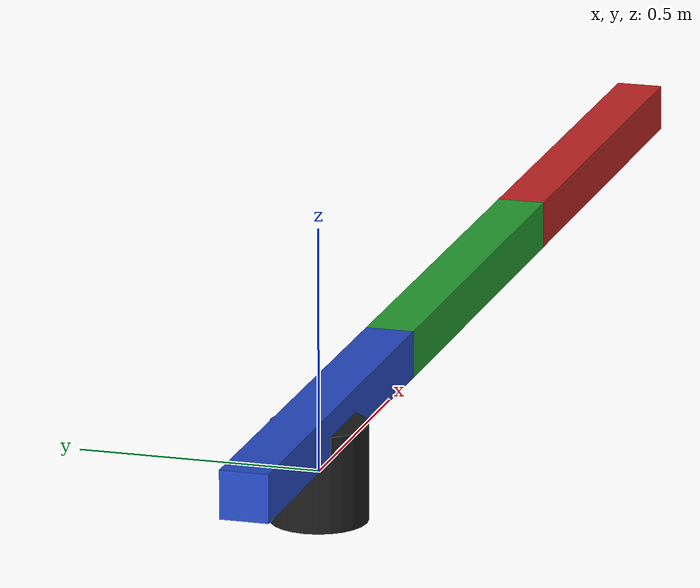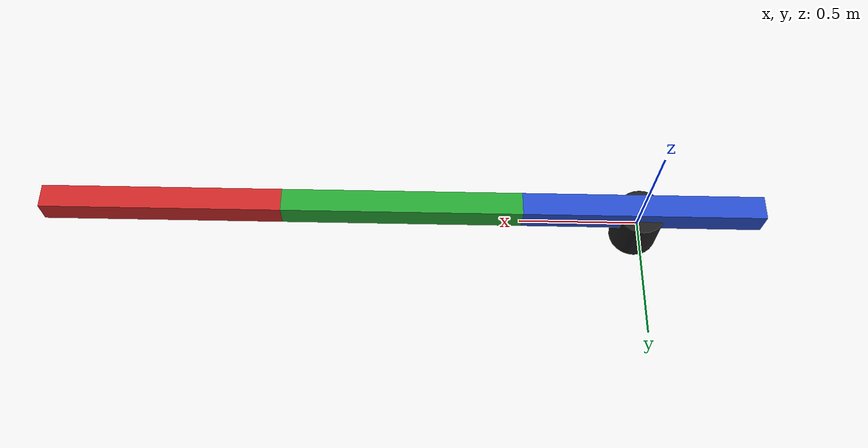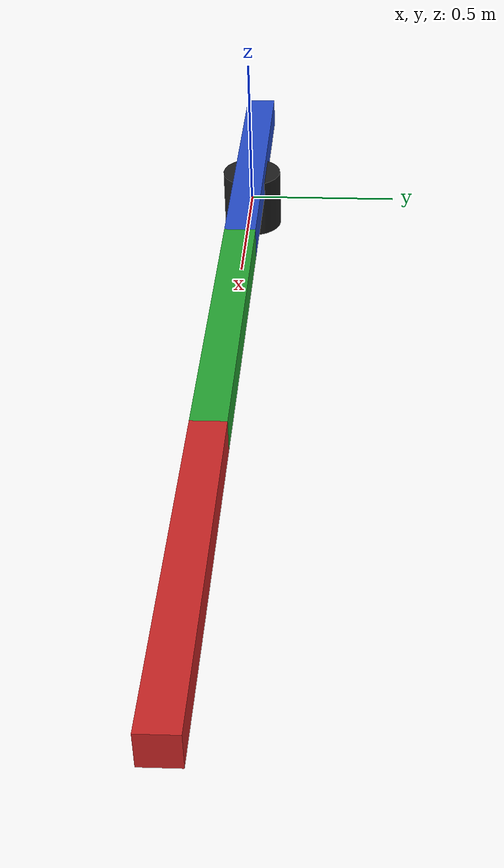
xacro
<?xml version="1.0"?>
<robot xmlns:xacro="http://www.ros.org/wiki/xacro" name="three_arm_robot">
  <!-- Properties -->
  <xacro:property name="link_length" value="1.0"/> <!-- Length of each arm -->
  <xacro:property name="link_width" value="0.1"/> <!-- Width of each arm -->
  <xacro:property name="joint_limit" value="1.5708"/> <!-- 90 degrees -->
  <xacro:property name="base_radius" value="0.1"/> <!-- Radius of the base -->
  <xacro:property name="base_height" value="0.2"/> <!-- Height of the base -->

  <!-- Base Link -->
  <link name="base_link">
    <visual>
      <geometry>
        <cylinder length="${base_height}" radius="${base_radius}"/>
      </geometry>
      <material name="black"/>
    </visual>
    <collision>
      <geometry>
        <cylinder length="${base_height}" radius="${base_radius}"/>
      </geometry>
    </collision>
    <inertial>
      <mass value="1.0"/>
      <origin xyz="0 0 0"/>
      <inertia ixx="0.01" ixy="0" ixz="0" iyy="0.01" iyz="0" izz="0.01"/>
    </inertial>
  </link>

  <!-- Joint 1 -->
  <joint name="joint1" type="revolute">
    <parent link="base_link"/>
    <child link="link1"/>
    <origin xyz="0 0 ${base_height / 2}" rpy="0 0 0"/>
    <axis xyz="0 0 1"/>
    <limit lower="-${joint_limit}" upper="${joint_limit}" effort="1.0" velocity="1.0"/>
  </joint>

  <!-- Link 1 -->
  <link name="link1">
    <visual>
      <geometry>
        <box size="${link_length} ${link_width} ${link_width}"/>
      </geometry>
      <material name="blue"/>
    </visual>
    <collision>
      <geometry>
        <box size="${link_length} ${link_width} ${link_width}"/>
      </geometry>
    </collision>
    <inertial>
      <mass value="1.0"/>
      <origin xyz="${link_length / 2} 0 0"/>
      <inertia ixx="0.01" ixy="0" ixz="0" iyy="0.01" iyz="0" izz="0.01"/>
    </inertial>
  </link>

    <!-- Joint 2 -->
    <joint name="joint2" type="revolute">
      <parent link="link1"/>
      <child link="link2"/>
      <origin xyz="${link_length} 0 0" rpy="0 0 0"/>
      <axis xyz="0 0 1"/>
      <limit lower="-${joint_limit}" upper="${joint_limit}" effort="1.0" velocity="1.0"/>
    </joint>

    <!-- Link 2 -->
    <link name="link2">
      <visual>
        <geometry>
          <box size="${link_length} ${link_width} ${link_width}"/>
        </geometry>
        <material name="green"/>
      </visual>
      <collision>
        <geometry>
          <box size="${link_length} ${link_width} ${link_width}"/>
        </geometry>
      </collision>
      <inertial>
        <mass value="1.0"/>
        <origin xyz="${link_length / 2} 0 0"/>
        <inertia ixx="0.01" ixy="0" ixz="0" iyy="0.01" iyz="0" izz="0.01"/>
      </inertial>
    </link>

    <!-- Joint 3 -->
    <joint name="joint3" type="revolute">
      <parent link="link2"/>
      <child link="link3"/>
      <origin xyz="${link_length} 0 0" rpy="0 0 0"/>
      <axis xyz="0 0 1"/>
      <limit lower="-${joint_limit}" upper="${joint_limit}" effort="1.0" velocity="1.0"/>
    </joint>

    <!-- Link 3 -->
    <link name="link3">
      <visual>
        <geometry>
          <box size="${link_length} ${link_width} ${link_width}"/>
        </geometry>
        <material name="red"/>
      </visual>
      <collision>
        <geometry>
          <box size="${link_length} ${link_width} ${link_width}"/>
        </geometry>
      </collision>
      <inertial>
        <mass value="1.0"/>
        <origin xyz="${link_length / 2} 0 0"/>
        <inertia ixx="0.01" ixy="0" ixz="0" iyy="0.01" iyz="0" izz="0.01"/>
      </inertial>
    </link>

</robot>
